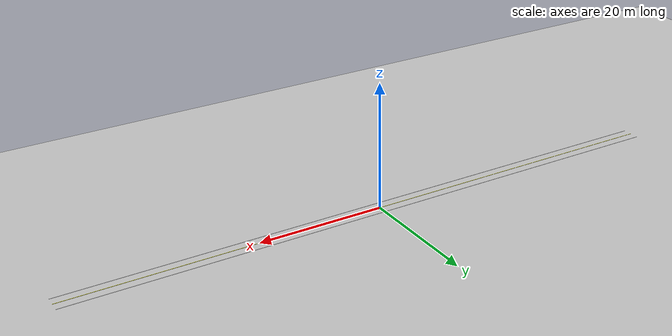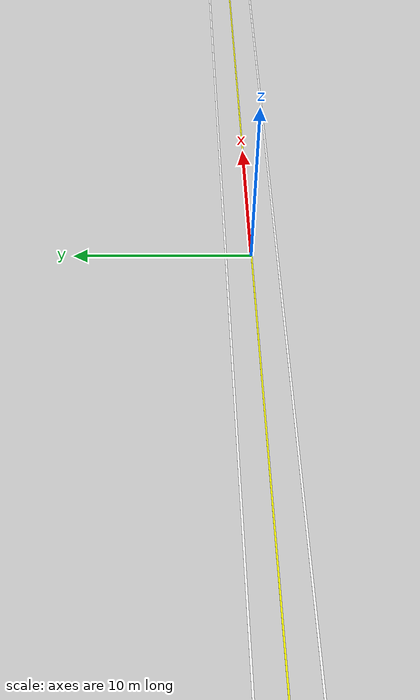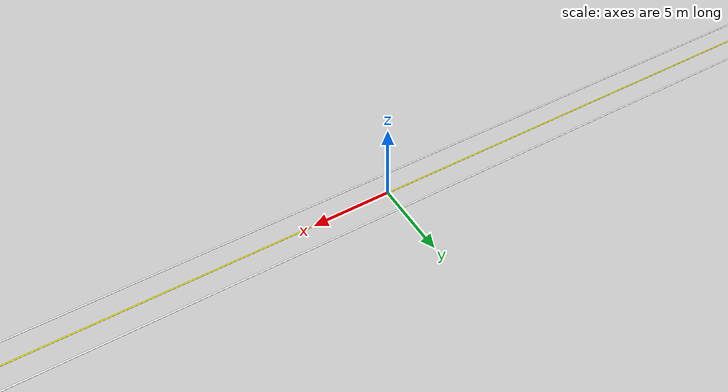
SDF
<?xml version="1.0" ?>
<sdf version="1.6">
  <world name="lane_world">

    <!-- ROS system plugins -->
    <plugin name="gazebo_ros" filename="libgazebo_ros_init.so">
      <ros>
        <namespace>/</namespace>
        <argument>--ros-args</argument>
      </ros>
    </plugin>
    <plugin name="gazebo_ros_factory" filename="libgazebo_ros_factory.so"/>
    <!-- thêm state để có /set_model_state -->
    <plugin name="gazebo_ros_state" filename="libgazebo_ros_state.so"/>

    <scene>
      <ambient>0.6 0.6 0.6 1</ambient>
      <background>0.8 0.8 0.8 1</background>
    </scene>

    <include><uri>model://sun</uri></include>
    <include><uri>model://ground_plane</uri></include>

    <model name="lane_visuals">
      <static>true</static>
      <link name="lane_link">
        <visual name="left_edge">
          <pose>0 1.45 0.015 0 0 0</pose>
          <geometry><box><size>100 0.10 0.01</size></box></geometry>
          <material><ambient>1 1 1 1</ambient><diffuse>1 1 1 1</diffuse><specular>0.2 0.2 0.2 1</specular><emissive>0.1 0.1 0.1 1</emissive></material>
        </visual>
        <visual name="right_edge">
          <pose>0 -1.45 0.015 0 0 0</pose>
          <geometry><box><size>100 0.10 0.01</size></box></geometry>
          <material><ambient>1 1 1 1</ambient><diffuse>1 1 1 1</diffuse><specular>0.2 0.2 0.2 1</specular><emissive>0.1 0.1 0.1 1</emissive></material>
        </visual>
        <visual name="center_line">
          <pose>0 0 0.015 0 0 0</pose>
          <geometry><box><size>100 0.08 0.01</size></box></geometry>
          <material><ambient>1 1 0 1</ambient><diffuse>1 1 0 1</diffuse><specular>0.2 0.2 0.2 1</specular><emissive>0.6 0.6 0 1</emissive></material>
        </visual>
      </link>
    </model>

    <physics name="default_physics" type="ode">
      <max_step_size>0.001</max_step_size>
      <real_time_update_rate>1000</real_time_update_rate>
      <real_time_factor>1.0</real_time_factor>
    </physics>

  </world>
</sdf>
